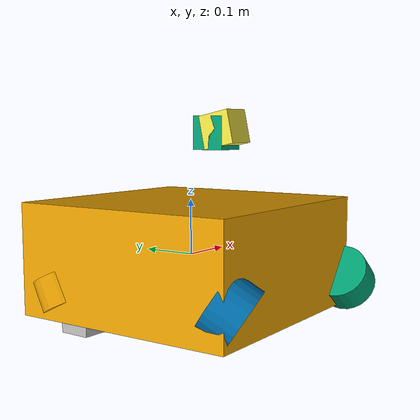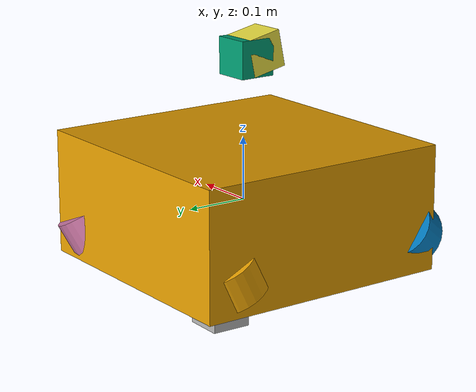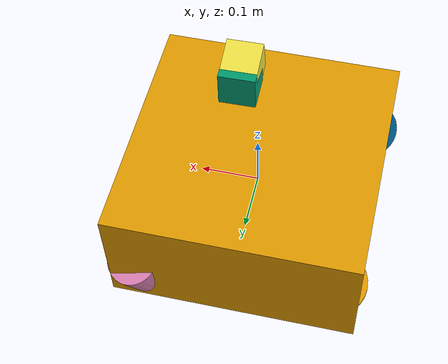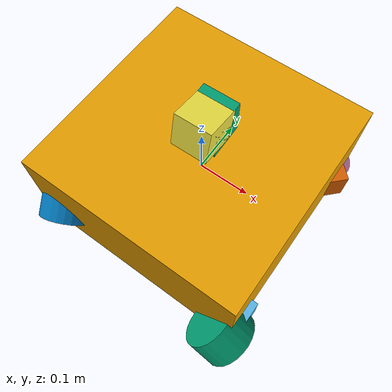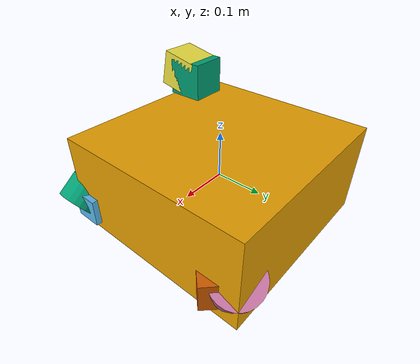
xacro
<?xml version="1.0"?>
<robot xmlns:xacro="http://www.ros.org/wiki/xacro" name="sentinel_stage5d">
  <!-- Generated from the validated Stage4 joint frames; semantic/RViz model only. -->
  <!-- Isaac Stage5D USD remains the sole physics and collision truth. -->
  <!-- All joints are continuous until physical limits are calibrated. -->
  <link name="base_link"><visual><geometry><box size="0.42 0.42 0.20"/></geometry></visual></link>
  <link name="steer_FL"><visual><geometry><box size="0.06 0.06 0.06"/></geometry></visual></link>
  <link name="drive_FL"><visual><geometry><cylinder radius="0.052" length="0.056"/></geometry></visual></link>
  <link name="steer_FR"><visual><geometry><box size="0.06 0.06 0.06"/></geometry></visual></link>
  <link name="drive_FR"><visual><geometry><cylinder radius="0.052" length="0.056"/></geometry></visual></link>
  <link name="steer_RL"><visual><geometry><box size="0.06 0.06 0.06"/></geometry></visual></link>
  <link name="drive_RL"><visual><geometry><cylinder radius="0.052" length="0.056"/></geometry></visual></link>
  <link name="steer_RR"><visual><geometry><box size="0.06 0.06 0.06"/></geometry></visual></link>
  <link name="drive_RR"><visual><geometry><cylinder radius="0.052" length="0.056"/></geometry></visual></link>
  <link name="yaw_big"><visual><geometry><box size="0.06 0.06 0.06"/></geometry></visual></link>
  <link name="yaw_small"><visual><geometry><box size="0.06 0.06 0.06"/></geometry></visual></link>
  <link name="pitch"><visual><geometry><box size="0.06 0.06 0.06"/></geometry></visual></link>
  <link name="lidar_link"/>
  <link name="imu_link"/>
  <joint name="steer_FL_joint" type="continuous">
    <parent link="base_link"/>
    <child link="steer_FL"/>
    <origin xyz="0.192692451809 -0.177883646112 -0.0511115358104" rpy="1.57079632679 0.00872664639293 3.14159265359"/>
    <axis xyz="0 1 0"/>
  </joint>
  <joint name="drive_FL_joint" type="continuous">
    <parent link="steer_FL"/>
    <child link="drive_FL"/>
    <origin xyz="-6.48725517749e-15 2.62190269495e-15 -0.0361" rpy="1.57079632679 -7.21644966006e-16 2.22626423776"/>
    <axis xyz="0 1 0"/>
  </joint>
  <joint name="steer_FR_joint" type="continuous">
    <parent link="base_link"/>
    <child link="steer_FR"/>
    <origin xyz="-0.0750171899769 -0.154904543122 -0.0423323593662" rpy="1.57079632679 3.88578058619e-16 1.95372180397"/>
    <axis xyz="0 1 0"/>
  </joint>
  <joint name="drive_FR_joint" type="continuous">
    <parent link="steer_FR"/>
    <child link="drive_FR"/>
    <origin xyz="-5.3290705182e-17 -5.68434188608e-17 -0.0976086108957" rpy="1.57079632679 -4.99600361081e-16 2.14823930229"/>
    <axis xyz="0 1 0"/>
  </joint>
  <joint name="steer_RL_joint" type="continuous">
    <parent link="base_link"/>
    <child link="steer_RL"/>
    <origin xyz="0.191878926823 0.146063646112 -0.051785742938" rpy="1.57079632679 2.22044604925e-16 0.803379316585"/>
    <axis xyz="0 1 0"/>
  </joint>
  <joint name="drive_RL_joint" type="continuous">
    <parent link="steer_RL"/>
    <child link="drive_RL"/>
    <origin xyz="-5.68434188608e-17 6.39488462184e-17 -0.0361" rpy="1.57079632679 9.99200722163e-16 -0.52070669364"/>
    <axis xyz="0 1 0"/>
  </joint>
  <joint name="steer_RR_joint" type="continuous">
    <parent link="base_link"/>
    <child link="steer_RR"/>
    <origin xyz="-0.132290856934 0.137685623179 -0.105708534096" rpy="1.57079632679 1.66533453694e-16 1.54550576283"/>
    <axis xyz="0 1 0"/>
  </joint>
  <joint name="drive_RR_joint" type="continuous">
    <parent link="steer_RR"/>
    <child link="drive_RR"/>
    <origin xyz="0.00838070299192 0.0539227911873 -0.0361" rpy="1.57079632679 7.49400541622e-16 -0.455601610543"/>
    <axis xyz="0 1 0"/>
  </joint>
  <joint name="yaw_big_joint" type="continuous">
    <parent link="base_link"/>
    <child link="yaw_big"/>
    <origin xyz="0.0840187256347 -0.0432153570248 0.0460931887401" rpy="0 0 0"/>
    <axis xyz="0 0 1"/>
  </joint>
  <joint name="yaw_small_joint" type="continuous">
    <parent link="yaw_big"/>
    <child link="yaw_small"/>
    <origin xyz="-0.0490788378834 0.0116935995166 0.17290681126" rpy="1.57079632679 -6.36643515683e-16 -3.12173123709"/>
    <axis xyz="0 1 0"/>
  </joint>
  <joint name="pitch_joint" type="continuous">
    <parent link="yaw_small"/>
    <child link="pitch"/>
    <origin xyz="1.42108547152e-16 0.00605035953151 -0.0171479908146" rpy="0.208428230997 -1.19254312054e-17 6.21892640532e-17"/>
    <axis xyz="1 0 0"/>
  </joint>
  <joint name="lidar_joint" type="fixed">
    <parent link="base_link"/>
    <child link="lidar_link"/>
    <origin xyz="0 0 0.80" rpy="0 0 0"/>
  </joint>
  <joint name="imu_joint" type="fixed">
    <parent link="lidar_link"/>
    <child link="imu_link"/>
    <origin xyz="0.011 0.02329 -0.04412" rpy="0 0 0"/>
  </joint>
</robot>
